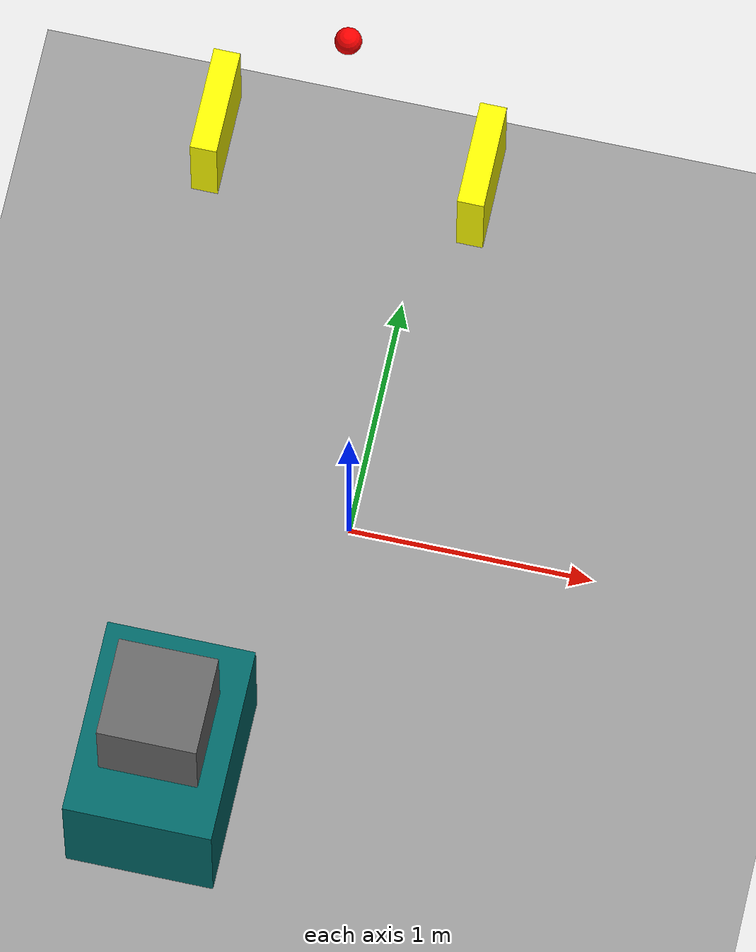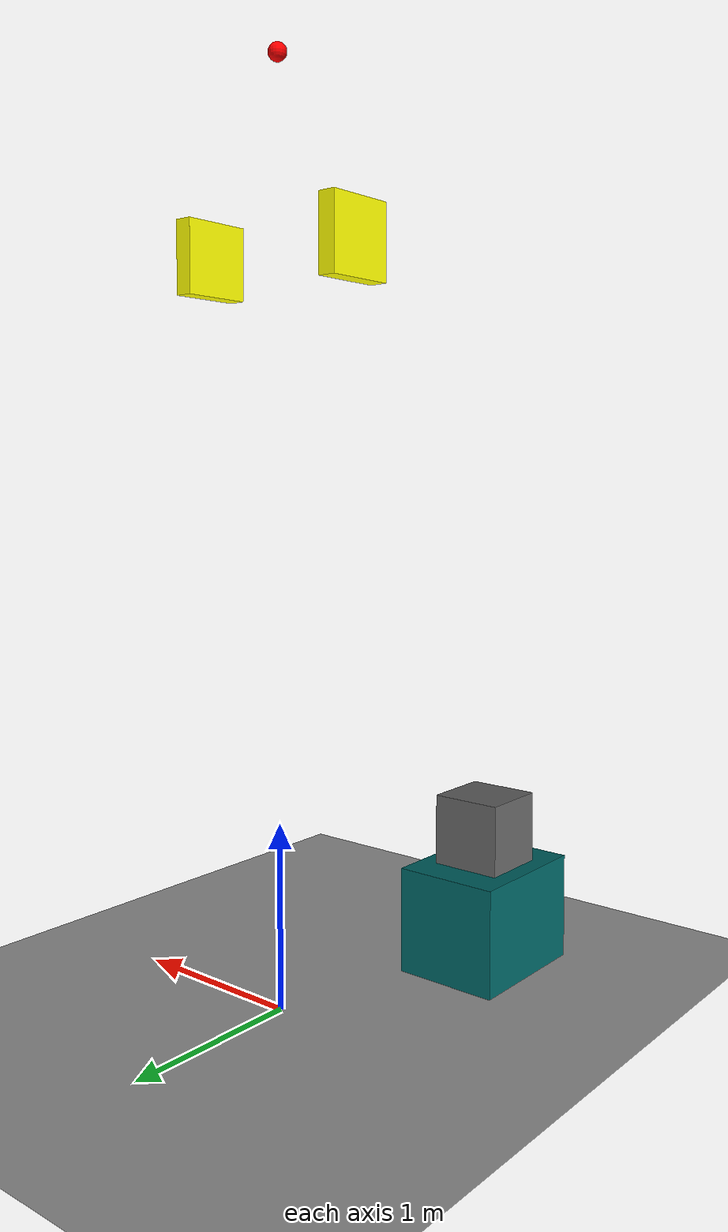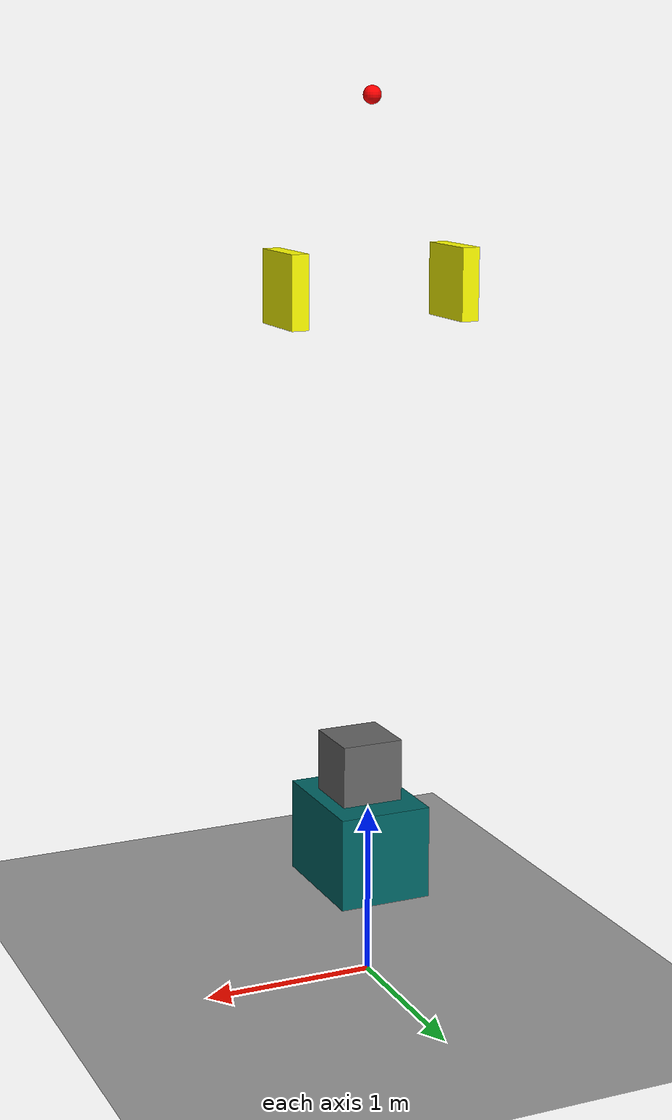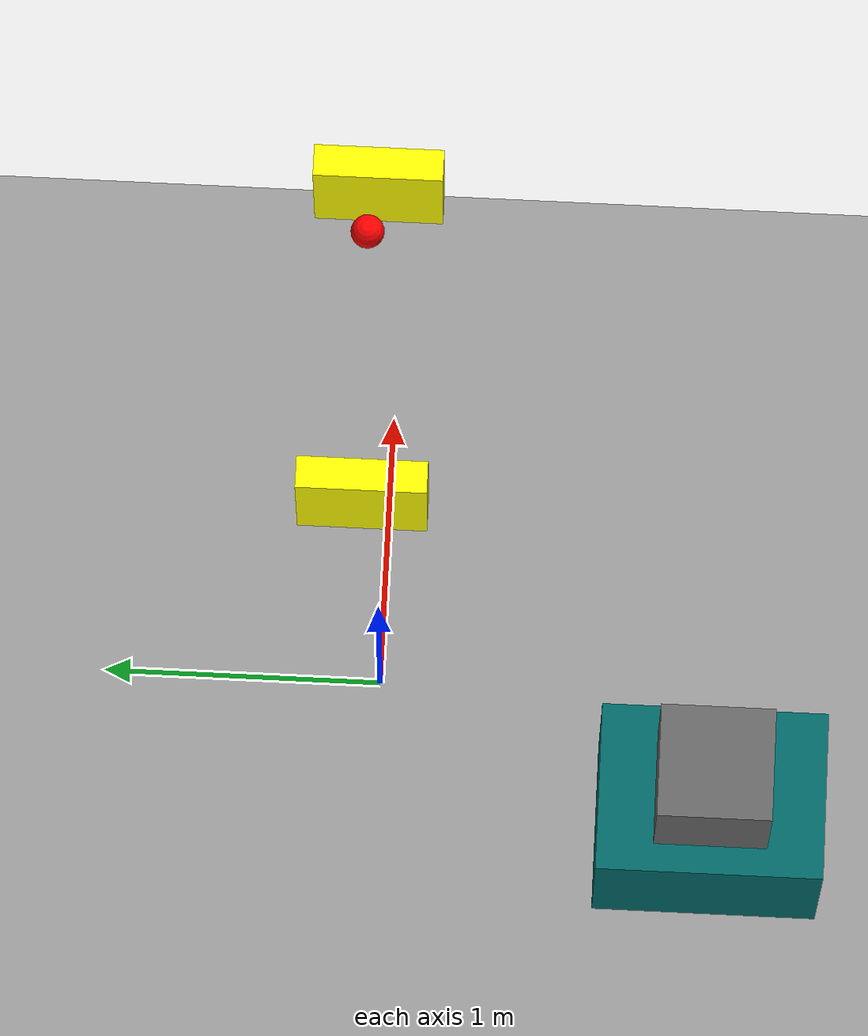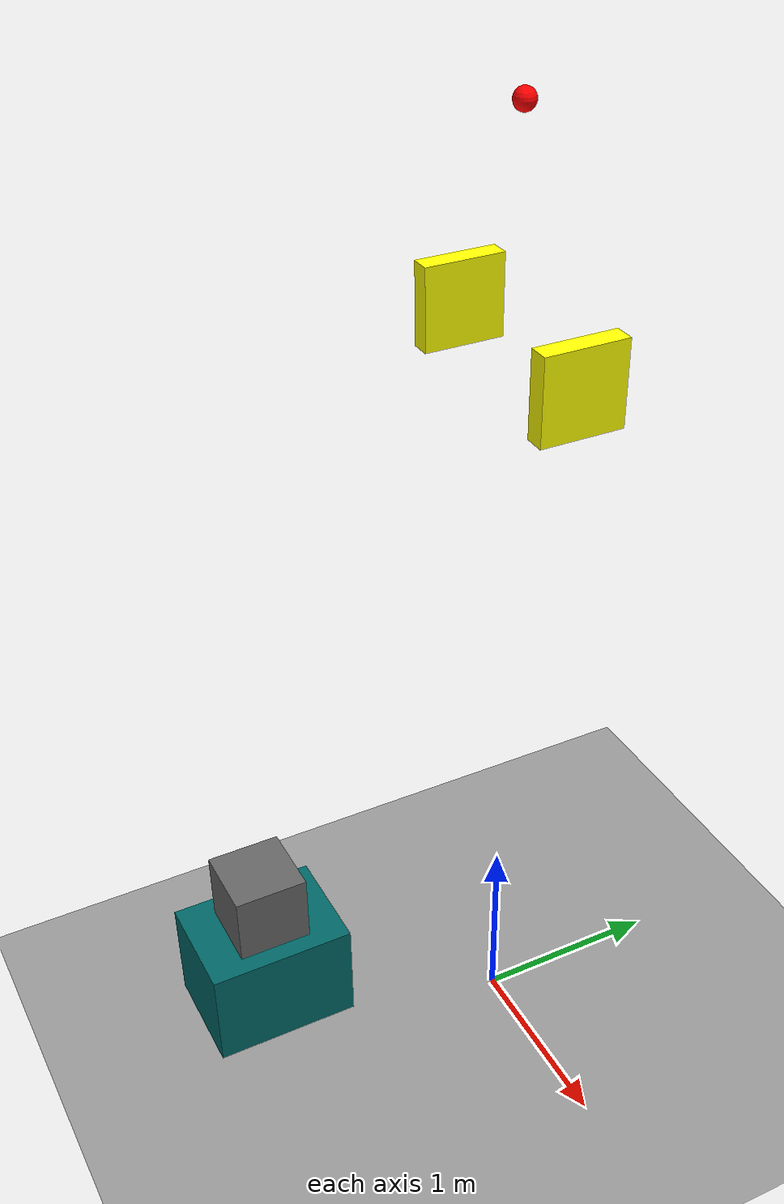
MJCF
<mujoco>
   <visual>
      <headlight ambient="1 1 1" />
   </visual>

   <option gravity="0 0 -2" />

   <include file="./blocks_models/one_on_another.xml"/>

   <worldbody>
      <light diffuse=".5 .5 .5" pos="0 0 3" dir="0 0 -1"/>

      <geom type="plane" size="10 10 0.1" rgba=".6 .6 .6 1"/>

      <body pos="0 0 5" euler="0 0 0">
         <body name="gripper-cam-body">
            <camera mode="fixed" name="gripper-cam"/>
         </body>

         <joint type="slide" name="x-slide" axis="1 0 0"/>
         <joint type="slide" name="y-slide" axis="0 1 0"/>
         <joint type="slide" name="z-slide" axis="0 0 1"/>
         <joint type="hinge" name="rotor" axis="0 0 1"/>
         <geom type="sphere" size=".05" rgba="255 0 0 1" mass="10"/>

         <body pos="-0.5 0 -1" name="arm1_body" euler="0 90 0">
            <joint type="slide" name="arm1"/>
            <geom type="box" size=".2 .2 .05" name="arm_left" rgba="255 128 0 1" mass="100"/>
         </body>
         <body pos="0.5 0 -1" name="arm2_body" euler="0 -90 0">
            <joint type="slide" name="arm2"/>
            <geom type="box" size=".2 .2 .05" name="arm_right" rgba="255 128 0 1" mass="100"/>
         </body>
      </body>

   </worldbody>
   <actuator>

      <position name="x-pos" joint="x-slide" kp="1000" ctrllimited="true" ctrlrange="-5 5"/>
      <position name="y-pos" joint="y-slide" kp="1000" ctrllimited="true" ctrlrange="-5 5"/>
      <position name="z-pos" joint="z-slide" kp="1000" ctrllimited="true" ctrlrange="-3.5 1"/>
      <position name="armp1" joint="arm1" kp="2000" ctrllimited="true" ctrlrange="-0.5 0.5"/>
      <position name="armp2" joint="arm2" kp="2000" ctrllimited="true" ctrlrange="-0.5 0.5"/>
      <position name="rotor-pos" joint="rotor" kp="1000" ctrllimited="true" ctrlrange="-3.14 3.14"/>

      <velocity name="x-vel" joint="x-slide" kv="1000"/>
      <velocity name="y-vel" joint="y-slide" kv="1000"/>
      <velocity name="z-vel" joint="z-slide" kv="1000"/>
      <velocity name="armv1" joint="arm1" kv="200"/>
      <velocity name="armv2" joint="arm2" kv="200"/>
      <velocity name="rotor-vel" joint="rotor" kv="1000"/>

   </actuator>
</mujoco>

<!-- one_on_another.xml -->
<mujoco>
    <worldbody>
        <body name="bottom_box" pos="-0.5 -1.2 .3" euler="0 0 0">
            <joint type = "free"/>
            <geom type="box" size=".3 .4 .3" rgba="0 .4 .4 1"/>
        </body>

        <body name="top_box" pos="-0.5 -1.2 .8" euler="0 0 0">
            <joint type = "free"/>
            <geom type="box" size=".2 .2 .2" rgba="0.4 .4 .4 1"/>
        </body>

    </worldbody>
</mujoco>
